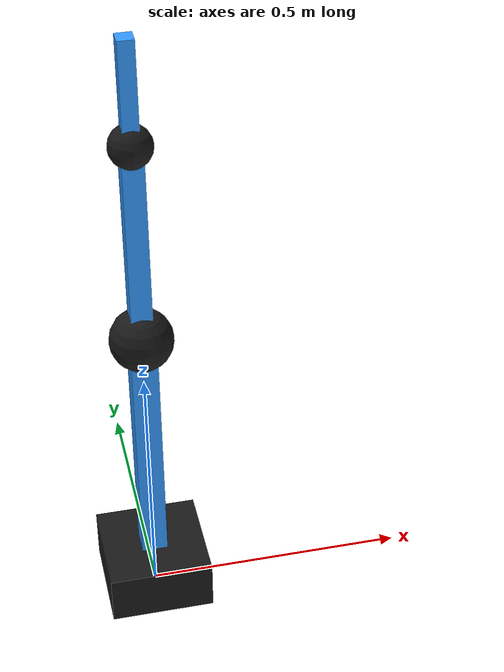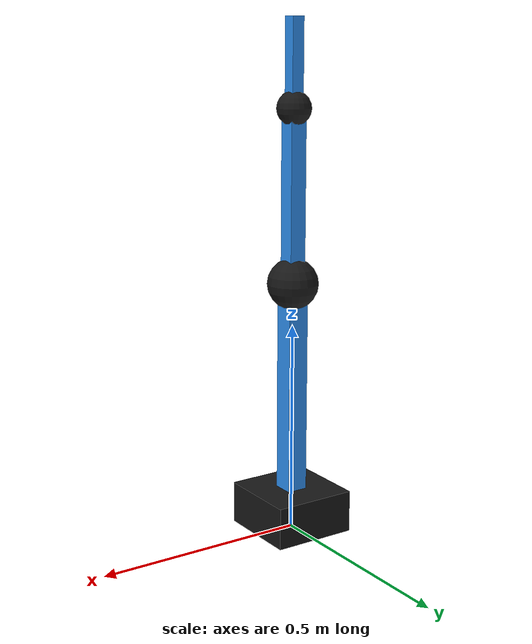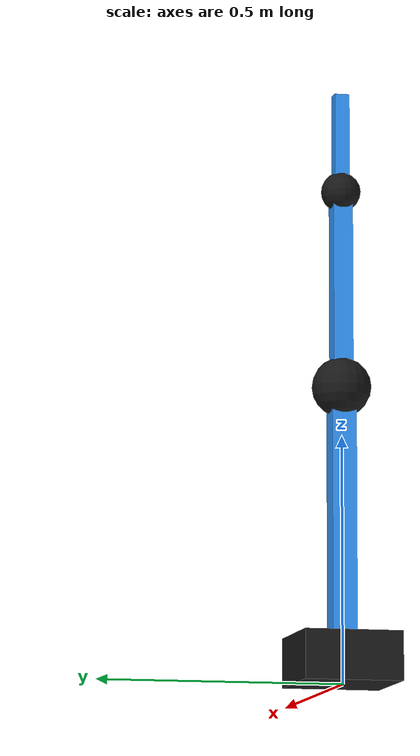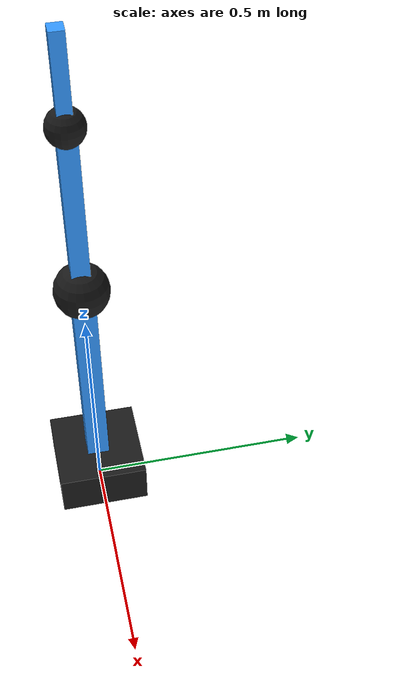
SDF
<?xml version="1.0" ?>
<sdf version="1.8">
  <model name="arm3dof">
    <static>false</static>

    <joint name="world_fixed" type="fixed">
      <parent>world</parent>
      <child>base_link</child>
    </joint>

    <link name="base_link">
      <pose>0 0 0.05 0 0 0</pose>
      <inertial>
        <mass>50.0</mass>
        <inertia><ixx>1.0</ixx><iyy>1.0</iyy><izz>1.0</izz></inertia>
      </inertial>
      <visual name="base_vis">
        <geometry><box><size>0.2 0.2 0.1</size></box></geometry>
        <material><diffuse>0.1 0.1 0.1 1</diffuse></material>
      </visual>
      <collision name="base_col"><geometry><box><size>0.2 0.2 0.1</size></box></geometry></collision>
    </link>

    <joint name="j1_base_yaw" type="revolute">
      <parent>base_link</parent>
      <child>link_1</child>
      <axis>
        <xyz>0 0 1</xyz>
        <limit><lower>-3.14</lower><upper>3.14</upper></limit>
        <dynamics><damping>10.0</damping><friction>5.0</friction></dynamics>
      </axis>
    </joint>

    <link name="link_1">
      <pose>0 0 0.35 0 0 0</pose>
      <inertial>
        <mass>5.0</mass>
        <inertia><ixx>0.2</ixx><iyy>0.2</iyy><izz>0.05</izz></inertia>
      </inertial>
      <visual name="l1_vis">
        <geometry><box><size>0.05 0.05 0.5</size></box></geometry>
        <material><diffuse>0.2 0.6 1.0 1</diffuse></material>
      </visual>
      <visual name="l1_joint_vis">
        <pose>0 0 0.25 0 0 0</pose>
        <geometry><sphere><radius>0.06</radius></sphere></geometry>
        <material><diffuse>0.1 0.1 0.1 1</diffuse></material>
      </visual>
      <collision name="l1_col"><geometry><box><size>0.05 0.05 0.5</size></box></geometry></collision>
    </link>

    <joint name="j2_shoulder" type="revolute">
      <parent>link_1</parent>
      <child>link_2</child>
      <pose>0 0 -0.2 0 0 0</pose>
      <axis>
        <xyz>0 1 0</xyz>
        <limit><lower>-1.57</lower><upper>1.57</upper></limit>
        <dynamics><damping>10.0</damping><friction>5.0</friction></dynamics>
      </axis>
    </joint>

    <link name="link_2">
      <pose>0 0 0.80 0 0 0</pose>
      <inertial>
        <mass>3.0</mass>
        <inertia><ixx>0.1</ixx><iyy>0.1</iyy><izz>0.01</izz></inertia>
      </inertial>
      <visual name="l2_vis">
        <geometry><box><size>0.04 0.04 0.4</size></box></geometry>
        <material><diffuse>0.2 0.6 1.0 1</diffuse></material>
      </visual>
      <visual name="l2_joint_vis">
        <pose>0 0 -0.2 0 0 0</pose>
        <geometry><sphere><radius>0.05</radius></sphere></geometry>
        <material><diffuse>0.1 0.1 0.1 1</diffuse></material>
      </visual>
      <collision name="l2_col"><geometry><box><size>0.04 0.04 0.4</size></box></geometry></collision>
    </link>

    <joint name="j3_elbow" type="revolute">
      <parent>link_2</parent>
      <child>link_3</child>
      <pose>0 0 -0.1 0 0 0</pose>
      <axis>
        <xyz>0 1 0</xyz>
        <limit><lower>-1.57</lower><upper>1.57</upper></limit>
        <dynamics><damping>5.0</damping><friction>5.0</friction></dynamics>
      </axis>
    </joint>

    <link name="link_3">
       <pose>0 0 1.10 0 0 0</pose>
       <inertial>
         <mass>1.0</mass>
         <inertia><ixx>0.05</ixx><iyy>0.05</iyy><izz>0.005</izz></inertia>
       </inertial>
       <visual name="l3_vis">
         <geometry><box><size>0.03 0.03 0.2</size></box></geometry>
         <material><diffuse>0.2 0.6 1.0 1</diffuse></material>
       </visual>
       <visual name="l3_joint_vis">
        <pose>0 0 -0.1 0 0 0</pose>
        <geometry><sphere><radius>0.04</radius></sphere></geometry>
        <material><diffuse>0.1 0.1 0.1 1</diffuse></material>
       </visual>
    </link>

    <plugin filename="gz-sim-joint-position-controller-system" name="gz::sim::systems::JointPositionController">
      <joint_name>j1_base_yaw</joint_name>
      <topic>/arm/j1/cmd_pos</topic>
      <p_gain>800</p_gain>
      <i_gain>0.0</i_gain> <d_gain>50</d_gain>
    </plugin>

    <plugin filename="gz-sim-joint-position-controller-system" name="gz::sim::systems::JointPositionController">
      <joint_name>j2_shoulder</joint_name>
      <topic>/arm/j2/cmd_pos</topic>
      <p_gain>1500</p_gain>
      <i_gain>0.0</i_gain> <d_gain>100</d_gain>
    </plugin>

    <plugin filename="gz-sim-joint-position-controller-system" name="gz::sim::systems::JointPositionController">
      <joint_name>j3_elbow</joint_name>
      <topic>/arm/j3/cmd_pos</topic>
      <p_gain>800</p_gain>
      <i_gain>0.0</i_gain> <d_gain>30</d_gain>
    </plugin>

  </model>
</sdf>
